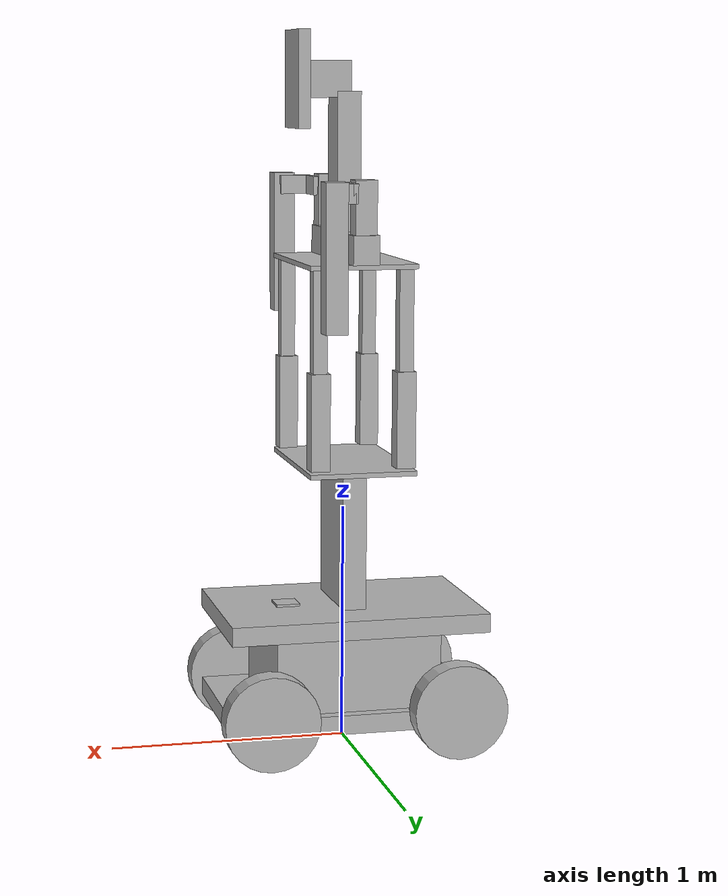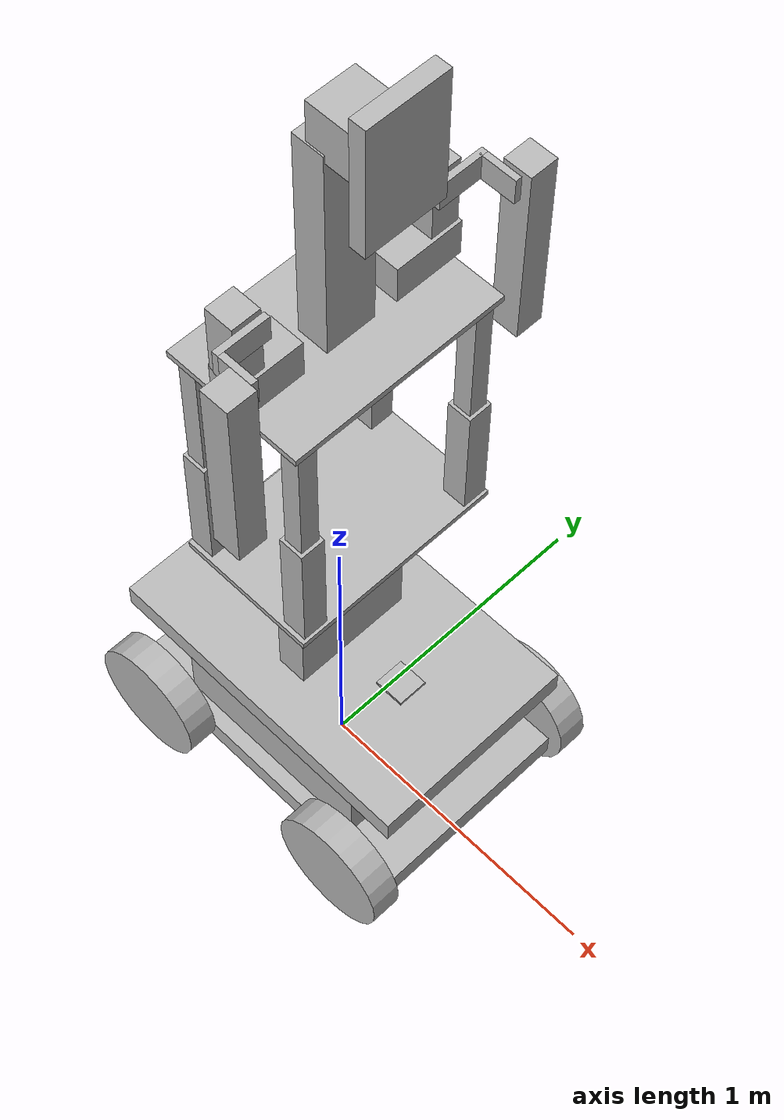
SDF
<?xml version='1.0'?>
<sdf version='1.4'>
	<model name="jeeves">
		<static>false</static>

		<link name='chassis'>
			<pose>0 0 .4 0 0 0</pose>

			<inertial>
				<mass>40.0</mass>
				<pose>-0.1 0 -0.3 0 0 0</pose>
				<inertia>
					<ixx>0.5</ixx>
					<iyy>1.0</iyy>
					<izz>0.1</izz>
				</inertia>
			</inertial>

			<collision name='collision'>
				<pose>0 0 0.2 0 0 0</pose>
				<geometry>
					<box>
						<size>1.1 0.7 1.0</size>
					</box>
				</geometry>
			</collision>
			<visual name='base_top'>
				<pose>0 0 0.8 0 0 0</pose>
				<geometry>
					<box>
						<size>0.45 0.7 0.02</size>
					</box>
				</geometry>
			</visual>
			<visual name="leg_visual">
				<pose>0 0 0.5 0 0 0</pose>
				<geometry>
					<box>
						<size>0.1 0.4 0.6</size>
					</box>
				</geometry>
			</visual>
			<visual name='base_bottom_top'>
				<pose>0 0 0.15 0 0 0</pose>
				<geometry>
					<box>
						<size>1.1 0.7 0.08</size>
					</box>
				</geometry>
			</visual>
			<visual name='base_bottom_mid'>
				<pose>0 0 -0.08 0 0 0</pose>
				<geometry>
					<box>
						<size>0.7 0.6 0.4</size>
					</box>
				</geometry>
			</visual>
			<visual name='base_bottom_bottom'>
				<pose>0 0 -0.25 0 0 0</pose>
				<geometry>
					<box>
						<size>1.1 0.7 0.08</size>
					</box>
				</geometry>
			</visual>

		</link>

		<link name="torso">
			<pose>0 0 2.05 0 0 0</pose>
			<!-- Inertia -->
			<inertial>
				<mass>20.0</mass>
				<pose>-0.1 0 -0.3 0 0 0</pose>
				<inertia>
					<ixx>0.5</ixx>
					<iyy>1.0</iyy>
					<izz>0.1</izz>
				</inertia>
			</inertial>

			<!-- Collision -->
			<collision name='collision'>
				<pose>0 0 -0.25 0 0 0</pose>
				<geometry>
					<box>
						<size>0.47 0.7 1.23</size>
					</box>
					<box>
						<size>0.27 0.2 2.23</size>
					</box>
				</geometry>
				<surface>
	            <friction>
	              <ode>
	                <mu>0.5</mu>
	                <mu2>0.2</mu2>
	                <fdir1>1.0 0 0</fdir1>
	                <slip1>0</slip1>
	                <slip2>0</slip2>
	              </ode>
	            </friction>
	            <bounce>
	              <restitution_coefficient>0</restitution_coefficient>
	              <threshold>1000000.0</threshold>
	            </bounce>
	            <contact>
	              <ode>
	                <soft_cfm>0</soft_cfm>
	                <kp>1e15</kp>
	                <kd>1e13</kd>
	                <max_vel>100.0</max_vel>
	                <min_depth>0.0001</min_depth>
	              </ode>
	            </contact>
	          </surface>
			</collision>

			<!-- Parts -->
			<visual name='torso_neck'>
				<pose>0 0 0.35 0 0 0</pose>
				<geometry>
					<box>
						<size>0.1 0.16 0.7</size>
					</box>
				</geometry>
			</visual>
			<visual name='torso_top'>
				<pose>0 0 0 0 0 0</pose>
				<geometry>
					<box>
						<size>0.45 0.7 0.02</size>
					</box>
				</geometry>
			</visual>
		</link>

		<!-- Linear actuators -->

		<link name="linearbase_front_left">
			<pose>0.18 0.3 1.22 0 0 0</pose>
			<visual name='torso_linactbase_front_left'>
				<pose>0 0 0.2 0 0 0</pose>
				<geometry>
					<box>
						<size>0.08 0.08 0.4</size>
					</box>
				</geometry>
			</visual>
		</link>
		<link name="linearbase_front_right">
			<pose>0.18 -0.3 1.22 0 0 0</pose>
			<visual name='torso_linactbase_front_right'>
				<pose>0 0 0.2 0 0 0</pose>
				<geometry>
					<box>
						<size>0.08 0.08 0.4</size>
					</box>
				</geometry>
			</visual>
		</link>
		<link name="linearbase_back_left">
			<pose>-0.18 0.3 1.22 0 0 0</pose>
			<visual name='torso_linactbase_back_left'>
				<pose>0 0 0.2 0 0 0</pose>
				<geometry>
					<box>
						<size>0.08 0.08 0.4</size>
					</box>
				</geometry>
			</visual>
		</link>
		<link name="linearbase_back_right">
			<pose>-0.18 -0.3 1.22 0 0 0</pose>
			<visual name='torso_linactbase_back_right'>
				<pose>0 0 0.2 0 0 0</pose>
				<geometry>
					<box>
						<size>0.08 0.08 0.4</size>
					</box>
				</geometry>
			</visual>
		</link>

		<link name="linear_front_left">
			<pose>0.18 0.3 1.6 0 0 0</pose>
			<visual name='visual'>
				<pose>0 0 0.2 0 0 0</pose>
				<geometry>
					<box>
						<size>0.06 0.06 0.5</size>
					</box>
				</geometry>
			</visual>
		</link>
		<link name="linear_front_right">
			<pose>0.18 -0.3 1.6 0 0 0</pose>
			<visual name='visual'>
				<pose>0 0 0.2 0 0 0</pose>
				<geometry>
					<box>
						<size>0.06 0.06 0.5</size>
					</box>
				</geometry>
			</visual>
		</link>
		<link name="linear_back_left">
			<pose>-0.18 0.3 1.6 0 0 0</pose>
			<visual name='visual'>
				<pose>0 0 0.2 0 0 0</pose>
				<geometry>
					<box>
						<size>0.06 0.06 0.5</size>
					</box>
				</geometry>
			</visual>
		</link>
		<link name="linear_back_right">
			<pose>-0.18 -0.3 1.6 0 0 0</pose>
			<visual name='visual'>
				<pose>0 0 0.2 0 0 0</pose>
				<geometry>
					<box>
						<size>0.06 0.06 0.5</size>
					</box>
				</geometry>
			</visual>
		</link>

		<link name="toplink_front_left">
			<pose>0.18 0.3 2.1 0 0 0</pose>
			<visual name='visual'>
				<pose>0 0 0.2 0 0 0</pose>
				<geometry>
					<box>
						<size>0 0 0</size>
					</box>
				</geometry>
			</visual>
		</link>
		<link name="toplink_front_right">
			<pose>0.18 -0.3 2.1 0 0 0</pose>
			<visual name='visual'>
				<pose>0 0 0.2 0 0 0</pose>
				<geometry>
					<box>
						<size>0 0 0</size>
					</box>
				</geometry>
			</visual>
		</link>
		<link name="toplink_back_left">
			<pose>-0.18 0.3 2.1 0 0 0</pose>
			<visual name='visual'>
				<pose>0 0 0.2 0 0 0</pose>
				<geometry>
					<box>
						<size>0 0 0</size>
					</box>
				</geometry>
			</visual>
		</link>
		<link name="toplink_back_right">
			<pose>-0.18 -0.3 2.1 0 0 0</pose>
			<visual name='visual'>
				<pose>0 0 0.2 0 0 0</pose>
				<geometry>
					<box>
						<size>0 0 0</size>
					</box>
				</geometry>
			</visual>
		</link>

		<!-- Left arm -->
		<link name="left_shoulder_yaw">
			<pose>0 0.26 2.12 0 0 0</pose>
			<visual name='visual'>
				<pose>0 0 0 0 0 0</pose>
				<geometry>
					<box>
						<size>0.11 0.22 0.12</size>
					</box>
				</geometry>
			</visual>
		</link>
		<link name="left_shoulder_roll">
			<pose>0 0.32 2.18 0 0 0</pose>
			<inertial>
				<mass>5.0</mass>
				<pose>0 0 0 0 0 0</pose>
				<inertia>
					<ixx>0.5</ixx>
					<iyy>1.0</iyy>
					<izz>0.1</izz>
				</inertia>
			</inertial>
			<visual name='visual'>
				<pose>0 0 0.11 0 0 0</pose>
				<geometry>
					<box>
						<size>0.09 0.09 0.22</size>
					</box>
				</geometry>
			</visual>
		</link>
		<link name="left_shoulder_link">
			<pose>0 0.32 2.35 0 0 0</pose>
			<visual name='left_shoulder_link1'>
				<pose>0.06 0.03 0 0 0 0</pose>
				<geometry>
					<box>
						<size>0.02 0.16 0.08</size>
					</box>
				</geometry>
			</visual>
			<visual name='left_shoulder_link2'>
				<pose>0.12 0.1 0 0 0 0</pose>
				<geometry>
					<box>
						<size>0.12 0.02 0.08</size>
					</box>
				</geometry>
			</visual>
		</link>
		<link name="left_shoulder_pitch">
			<self_collide>true</self_collide>
			<pose>0.16 0.48 2.35 0 0 0</pose>
			<inertial>
				<mass>10.0</mass>
				<pose>-0.1 0 -0.3 0 0 0</pose>
				<inertia>
					<ixx>0.5</ixx>
					<iyy>1.0</iyy>
					<izz>0.1</izz>
				</inertia>
			</inertial>
			<collision name='collision'>
				<pose>0 0 -0.25 0 0 0</pose>
				<geometry>
					<box>
						<size>0.09 0.09 0.6</size>
					</box>
				</geometry>
				<surface>
		            <friction>
		              <ode>
		                <mu>0.5</mu>
		                <mu2>0.2</mu2>
		                <fdir1>1.0 0 0</fdir1>
		                <slip1>0</slip1>
		                <slip2>0</slip2>
		              </ode>
		            </friction>
		            <bounce>
		              <restitution_coefficient>0</restitution_coefficient>
		              <threshold>1000000.0</threshold>
		            </bounce>
		            <contact>
		              <ode>
		                <soft_cfm>0</soft_cfm>
		                <kp>1e15</kp>
		                <kd>1e13</kd>
		                <max_vel>100.0</max_vel>
		                <min_depth>0.0001</min_depth>
		              </ode>
		            </contact>
		          </surface>
			</collision>
			<visual name='visual'>
				<pose>0 0 -0.25 0 0 0</pose>
				<geometry>
					<box>
						<size>0.09 0.09 0.6</size>
					</box>
				</geometry>
			</visual>
		</link>

		<!-- Right arm -->
		<link name="right_shoulder_yaw">
			<pose>0 -0.26 2.12 0 0 0</pose>
			<visual name='visual'>
				<pose>0 0 0 0 0 0</pose>
				<geometry>
					<box>
						<size>0.11 0.2 0.12</size>
					</box>
				</geometry>
			</visual>
		</link>

		<link name="right_shoulder_roll">
			<pose>0 -0.32 2.18 0 0 0</pose>
			<inertial>
				<mass>5.0</mass>
				<pose>0 0 0 0 0 0</pose>
				<inertia>
					<ixx>0.5</ixx>
					<iyy>1.0</iyy>
					<izz>0.1</izz>
				</inertia>
			</inertial>
			<visual name='visual'>
				<pose>0 0 0.11 0 0 0</pose>
				<geometry>
					<box>
						<size>0.09 0.09 0.22</size>
					</box>
				</geometry>
			</visual>
		</link>
		<link name="right_shoulder_link">
			<pose>0 -0.32 2.35 0 0 0</pose>
			<visual name='right_shoulder_link1'>
				<pose>0.06 -0.03 0 0 0 0</pose>
				<geometry>
					<box>
						<size>0.02 0.16 0.08</size>
					</box>
				</geometry>
			</visual>
			<visual name='right_shoulder_link2'>
				<pose>0.12 -0.1 0 0 0 0</pose>
				<geometry>
					<box>
						<size>0.12 0.02 0.08</size>
					</box>
				</geometry>
			</visual>
		</link>
		<link name="right_shoulder_pitch">
			<self_collide>true</self_collide>
			<pose>0.16 -0.48 2.35 0 0 0</pose>
			<inertial>
				<mass>10.0</mass>
				<pose>-0.1 0 -0.3 0 0 0</pose>
				<inertia>
					<ixx>0.5</ixx>
					<iyy>1.0</iyy>
					<izz>0.1</izz>
				</inertia>
			</inertial>
			<collision name='collision'>
				<pose>0 0 -0.25 0 0 0</pose>
				<geometry>
					<box>
						<size>0.09 0.09 0.6</size>
					</box>
				</geometry>
				<surface>
		            <friction>
		              <ode>
		                <mu>0.5</mu>
		                <mu2>0.2</mu2>
		                <fdir1>1.0 0 0</fdir1>
		                <slip1>0</slip1>
		                <slip2>0</slip2>
		              </ode>
		            </friction>
		            <bounce>
		              <restitution_coefficient>0</restitution_coefficient>
		              <threshold>1000000.0</threshold>
		            </bounce>
		            <contact>
		              <ode>
		                <soft_cfm>0</soft_cfm>
		                <kp>1e15</kp>
		                <kd>1e13</kd>
		                <max_vel>100.0</max_vel>
		                <min_depth>0.0001</min_depth>
		              </ode>
		            </contact>
		          </surface>
			</collision>
			<visual name='right_shoulder_pitch'>
				<pose>0 0 -0.25 0 0 0</pose>
				<geometry>
					<box>
						<size>0.09 0.09 0.6</size>
					</box>
				</geometry>
			</visual>
		</link>

		<!-- head/face -->
		<link name="neck_yawroll">
			<pose>0 0 2.8 0 0 0</pose>
			<inertial>
				<mass>1.0</mass>
				<pose>0 0 0 0 0 0</pose>
				<inertia>
					<ixx>0.5</ixx>
					<iyy>1.0</iyy>
					<izz>0.1</izz>
				</inertia>
			</inertial>
			<collision name='collision'>
				<pose>0.1 0 0 0 0 0</pose>
				<geometry>
					<box>
						<size>0.22 0.15 0.15</size>
					</box>
				</geometry>
			</collision>
			<visual name='visual'>
				<pose>0.1 0 0 0 0 0</pose>
				<geometry>
					<box>
						<size>0.22 0.15 0.15</size>
					</box>
				</geometry>
			</visual>
		</link>
		<link name="face">
			<pose>0.15 0 2.8 0 0 0</pose>
			<inertial>
				<mass>1.0</mass>
				<pose>0 0 0 0 0 0</pose>
				<inertia>
					<ixx>0.5</ixx>
					<iyy>1.0</iyy>
					<izz>0.1</izz>
				</inertia>
			</inertial>
			<collision name='collision'>
				<pose>0.05 0 0 0 0 0</pose>
				<geometry>
					<box>
						<size>0.05 0.25 0.4</size>
					</box>
				</geometry>
			</collision>
			<visual name='visual'>
				<pose>0.05 0 0 0 0 0</pose>
				<geometry>
					<box>
						<size>0.05 0.25 0.4</size>
					</box>
				</geometry>
			</visual>
		</link>

		<link name="front_left_wheel">
			<pose>0.4 0.4 0.2 0 1.5707 1.5707</pose>
			<collision name="collision">
				<geometry>
					<cylinder>
						<radius>.2</radius>
						<length>.1</length>
					</cylinder>
				</geometry>
			</collision>
			<visual name="visual">
				<geometry>
					<cylinder>
						<radius>.2</radius>
						<length>.1</length>
					</cylinder>
				</geometry>
			</visual>
		</link>

		<link name="front_right_wheel">
			<pose>0.4 -0.4 0.2 0 1.5707 1.5707</pose>
			<collision name="collision">
				<geometry>
					<cylinder>
						<radius>.2</radius>
						<length>.1</length>
					</cylinder>
				</geometry>
			</collision>
			<visual name="visual">
				<geometry>
					<cylinder>
						<radius>.2</radius>
						<length>.1</length>
					</cylinder>
				</geometry>
			</visual>
		</link>

		<link name="back_left_wheel">
			<pose>-0.4 0.4 0.2 0 1.5707 1.5707</pose>
			<collision name="collision">
				<geometry>
					<cylinder>
						<radius>.2</radius>
						<length>.1</length>
					</cylinder>
				</geometry>
			</collision>
			<visual name="visual">
				<geometry>
					<cylinder>
						<radius>.2</radius>
						<length>.1</length>
					</cylinder>
				</geometry>
			</visual>
		</link>

		<link name="back_right_wheel">
			<pose>-0.4 -0.4 0.2 0 1.5707 1.5707</pose>
			<collision name="collision">
				<geometry>
					<cylinder>
						<radius>.2</radius>
						<length>.1</length>
					</cylinder>
				</geometry>
			</collision>
			<visual name="visual">
				<geometry>
					<cylinder>
						<radius>.2</radius>
						<length>.1</length>
					</cylinder>
				</geometry>
			</visual>
		</link>

		<joint type="revolute" name="front_left_wheel_hinge">
			<pose>0 0 -0.03 0 0 0</pose>
			<child>front_left_wheel</child>
			<parent>chassis</parent>
			<axis>
				<xyz>0 1 0</xyz>
			</axis>
		</joint>

		<joint type="revolute" name="front_right_wheel_hinge">
			<pose>0 0 0.03 0 0 0</pose>
			<child>front_right_wheel</child>
			<parent>chassis</parent>
			<axis>
				<xyz>0 1 0</xyz>
			</axis>
		</joint>

		<joint type="revolute" name="back_left_wheel_hinge">
			<pose>0 0 -0.03 0 0 0</pose>
			<child>back_left_wheel</child>
			<parent>chassis</parent>
			<axis>
				<xyz>0 1 0</xyz>
			</axis>
		</joint>

		<joint type="revolute" name="back_right_wheel_hinge">
			<pose>0 0 0.03 0 0 0</pose>
			<child>back_right_wheel</child>
			<parent>chassis</parent>
			<axis>
				<xyz>0 1 0</xyz>
			</axis>
		</joint>

		<!-- Left shoulder joints -->
		<joint type="revolute" name="left_shoulder_yaw_mount">
			<pose>0 0 0 0 0 0</pose>
			<child>left_shoulder_yaw</child>
			<parent>torso</parent>
			<axis>
				<xyz>0 0 1</xyz>
				<limit>
					<upper>0</upper>
					<lower>0</lower>
				</limit>
			</axis>
		</joint>
		<joint type="revolute" name="left_shoulder_yaw_joint">
			<pose>0 0 -0.11 0 0 0 </pose>
			<child>left_shoulder_roll</child>
			<parent>left_shoulder_yaw</parent>
			<axis>
				<dynamics>
		          <damping>1.000000</damping>
		          <friction>1.000000</friction>
		        </dynamics>
		        <limit>
		          <lower>0.0</lower>
		          <upper>1.0</upper>
		        </limit>
				<xyz>0 0 1</xyz>
			</axis>
		</joint>

		<joint type="revolute" name="left_shoulder_rolljoint">
			<pose>0 0 0 0 0 0 </pose>
			<child>left_shoulder_link</child>
			<parent>left_shoulder_roll</parent>
			<axis>
				<dynamics>
		          <damping>1.000000</damping>
		          <friction>1.00000</friction>
		        </dynamics>
				<xyz>1 0 0</xyz>
			</axis>
		</joint>
		<!-- END of left shoulder joints -->

		<!-- Right shoulder joints -->
		<joint type="revolute" name="left_shoulder_pitchjoint">
			<pose>0 0 0 0 0 0 </pose>
			<child>left_shoulder_pitch</child>
			<parent>left_shoulder_link</parent>
			<axis>
				<xyz>0 1 0</xyz>
			</axis>
		</joint>

		<joint type="revolute" name="right_shoulder_yaw_mount">
			<pose>0 0 0 0 0 0</pose>
			<child>right_shoulder_yaw</child>
			<parent>torso</parent>
			<axis>
				<xyz>0 0 1</xyz>
				<limit>
					<upper>0</upper>
					<lower>0</lower>
				</limit>
			</axis>
		</joint>

		<joint type="revolute" name="right_shoulder_yaw_joint">
			<pose>0 0 -0.11 0 0 0</pose>
			<child>right_shoulder_roll</child>
			<parent>right_shoulder_yaw</parent>
			<axis>
				<dynamics>
		          <damping>1.000000</damping>
		          <friction>1.000000</friction>
		        </dynamics>
		        <limit>
		          <lower>0.0</lower>
		          <upper>1.0</upper>
		        </limit>
				<xyz>0 0 1</xyz>
			</axis>
		</joint>

		<joint type="revolute" name="right_shoulder_rolljoint">
			<pose>0 0 0 0 0 0</pose>
			<child>right_shoulder_link</child>
			<parent>right_shoulder_roll</parent>
			<axis>
				<dynamics>
		          <damping>1.000000</damping>
		          <friction>1.000000</friction>
		        </dynamics>
				<xyz>1 0 0</xyz>
			</axis>
		</joint>

		<joint type="revolute" name="right_shoulder_pitchjoint">
			<pose>0 0 0 0 0 0</pose>
			<child>right_shoulder_pitch</child>
			<parent>right_shoulder_link</parent>
			<axis>
				<xyz>0 1 0</xyz>
			</axis>
		</joint>
		<!-- END of right shoulder joints -->

		<!-- joints for base of linear actuators (not movable) -->
		<joint type="revolute" name="linearbase_front_left_mount">
			<pose>0 0 0 0 0 0</pose>
			<child>linearbase_front_left</child>
			<parent>chassis</parent>
			<axis>
				<xyz>0 0 1</xyz>
				<limit>
					<upper>0</upper>
					<lower>0</lower>
				</limit>
			</axis>
		</joint>
		<joint type="revolute" name="linearbase_front_right_mount">
			<pose>0 0 0 0 0 0</pose>
			<child>linearbase_front_right</child>
			<parent>chassis</parent>
			<axis>
				<xyz>0 0 1</xyz>
				<limit>
					<upper>0</upper>
					<lower>0</lower>
				</limit>
			</axis>
		</joint>
		<joint type="revolute" name="linearbase_back_left_mount">
			<pose>0 0 0 0 0 0</pose>
			<child>linearbase_back_left</child>
			<parent>chassis</parent>
			<axis>
				<xyz>0 0 1</xyz>
				<limit>
					<upper>0</upper>
					<lower>0</lower>
				</limit>
			</axis>
		</joint>
		<joint type="revolute" name="linearbase_back_right_mount">
			<pose>0 0 0 0 0 0</pose>
			<child>linearbase_back_right</child>
			<parent>chassis</parent>
			<axis>
				<xyz>0 0 1</xyz>
				<limit>
					<upper>0</upper>
					<lower>0</lower>
				</limit>
			</axis>
		</joint>
		<!-- END of joints for base of linear actuators (not movable) -->

		<joint type="prismatic" name="linear_front_left">
			<pose>0 0 0 0 0 0</pose>
			<child>linear_front_left</child>
			<parent>linearbase_front_left</parent>
			<axis>
		        <dynamics>
		          <damping>1.000000</damping>
		          <friction>1.000000</friction>
		        </dynamics>
		        <limit>
		          <lower>0.0</lower>
		          <upper>0.1</upper>
		        </limit>
		        <xyz>0 0 1</xyz>
		      </axis>
		      <physics>
		          <ode>
		            <cfm>0.0</cfm>
		            <bounce>0.0</bounce>
		            <max_force>1000.0</max_force>
		            <velocity>0.0</velocity>
		            <fudge_factor>0.0</fudge_factor>
		            <limit>
		              <cfm>0.0</cfm>
		              <erp>0.2</erp>
		            </limit>
		          </ode>
		        </physics>
		</joint>
		<joint type="prismatic" name="linear_front_right">
			<pose>0 0 0 0 0 0</pose>
			<child>linear_front_right</child>
			<parent>linearbase_front_right</parent>
			<axis>
		        <dynamics>
		          <damping>1.000000</damping>
		          <friction>1.000000</friction>
		        </dynamics>
		        <limit>
		          <lower>0.0</lower>
		          <upper>0.1</upper>
		        </limit>
		        <xyz>0 0 1</xyz>
		      </axis>
		      <physics>
		          <ode>
		            <cfm>0.0</cfm>
		            <bounce>0.0</bounce>
		            <max_force>1000.0</max_force>
		            <velocity>0.0</velocity>
		            <fudge_factor>0.0</fudge_factor>
		            <limit>
		              <cfm>0.0</cfm>
		              <erp>0.2</erp>
		            </limit>
		          </ode>
		        </physics>
		</joint>
		<joint type="prismatic" name="linear_back_left">
			<pose>0 0 0 0 0 0</pose>
			<child>linear_back_left</child>
			<parent>linearbase_back_left</parent>
			<axis>
		        <limit>
		          <lower>0.0</lower>
		          <upper>0.1</upper>
		        </limit>
		        <xyz>0 0 1</xyz>
		      </axis>
		      <physics>
		          <ode>
		            <cfm>0.0</cfm>
		            <bounce>0.0</bounce>
		            <max_force>1000.0</max_force>
		            <velocity>0.0</velocity>
		            <fudge_factor>0.0</fudge_factor>
		            <limit>
		              <cfm>0.0</cfm>
		              <erp>0.2</erp>
		            </limit>
		          </ode>
		        </physics>
		</joint>
		<joint type="prismatic" name="linear_back_right">
			<pose>0 0 0 0 0 0</pose>
			<child>linear_back_right</child>
			<parent>linearbase_back_right</parent>
			<axis>
		        <limit>
		          <lower>0.0</lower>
		          <upper>0.1</upper>
		        </limit>
		        <xyz>0 0 1</xyz>
		      </axis>
		      <physics>
		          <ode>
		            <cfm>0.0</cfm>
		            <bounce>0.0</bounce>
		            <max_force>1000.0</max_force>
		            <velocity>0.0</velocity>
		            <fudge_factor>0.0</fudge_factor>
		            <limit>
		              <cfm>0.0</cfm>
		              <erp>0.2</erp>
		            </limit>
		          </ode>
		        </physics>
		</joint>

		<!-- NECK JOINT -->
		<joint type="revolute" name="neck">
			<pose>0 0 0 0 0 0</pose>
			<child>neck_yawroll</child>
			<parent>torso</parent>
			<axis>
				<xyz>1 0 1</xyz>
			</axis>
		</joint>
		<joint type="revolute" name="face">
			<pose>0 0 0 0 0 0</pose>
			<child>face</child>
			<parent>neck_yawroll</parent>
			<axis>
				<xyz>0 1 0</xyz>
			</axis>
		</joint>

		<joint type="revolute" name="toplink_front_left_mount">
			<pose>0 0 0 0 0 0</pose>
			<child>toplink_front_left</child>
			<parent>torso</parent>
			<axis>
				<xyz>0 0 1</xyz>
				<limit>
					<upper>0</upper>
					<lower>0</lower>
				</limit>
			</axis>
		</joint>
		<joint type="revolute" name="toplink_front_right_mount">
			<pose>0 0 0 0 0 0</pose>
			<child>toplink_front_right</child>
			<parent>torso</parent>
			<axis>
				<xyz>0 0 1</xyz>
				<limit>
					<upper>0</upper>
					<lower>0</lower>
				</limit>
			</axis>
		</joint>
		<joint type="revolute" name="toplink_back_left_mount">
			<pose>0 0 0 0 0 0</pose>
			<child>toplink_back_left</child>
			<parent>torso</parent>
			<axis>
				<xyz>0 0 1</xyz>
				<limit>
					<upper>0</upper>
					<lower>0</lower>
				</limit>
			</axis>
		</joint>
		<joint type="revolute" name="toplink_back_right_mount">
			<pose>0 0 0 0 0 0</pose>
			<child>toplink_back_right</child>
			<parent>torso</parent>
			<axis>
				<xyz>0 0 1</xyz>
				<limit>
					<upper>0</upper>
					<lower>0</lower>
				</limit>
			</axis>
		</joint>
		<joint type="revolute" name="toplink_front_left_mount2">
			<pose>0 0 0 0 0 0</pose>
			<child>toplink_front_left</child>
			<parent>linear_front_left</parent>
			<axis>
				<xyz>0 0 1</xyz>
				<limit>
					<upper>0</upper>
					<lower>0</lower>
				</limit>
			</axis>
		</joint>
		<joint type="revolute" name="toplink_front_right_mount2">
			<pose>0 0 0 0 0 0</pose>
			<child>toplink_front_right</child>
			<parent>linear_front_right</parent>
			<axis>
				<xyz>0 0 1</xyz>
				<limit>
					<upper>0</upper>
					<lower>0</lower>
				</limit>
			</axis>
		</joint>
		<joint type="revolute" name="toplink_back_left_mount2">
			<pose>0 0 0 0 0 0</pose>
			<child>toplink_back_left</child>
			<parent>linear_back_left</parent>
			<axis>
				<xyz>0 0 1</xyz>
				<limit>
					<upper>0</upper>
					<lower>0</lower>
				</limit>
			</axis>
		</joint>
		<joint type="revolute" name="toplink_back_right_mount2">
			<pose>0 0 0 0 0 0</pose>
			<child>toplink_back_right</child>
			<parent>linear_back_right</parent>
			<axis>
				<xyz>0 0 1</xyz>
				<limit>
					<upper>0</upper>
					<lower>0</lower>
				</limit>
			</axis>
		</joint>

		<include>
			<uri>model://camera</uri>
			<pose>0.25 0 0.55 0 0 0</pose>
		</include>
		<joint name="camera_joint" type="revolute">
			<child>camera::link</child>
			<parent>chassis</parent>
			<axis>
				<xyz>0 0 1</xyz>
				<limit>
					<upper>0</upper>
					<lower>0</lower>
				</limit>
			</axis>
		</joint>
	</model>
</sdf>

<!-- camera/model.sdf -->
<sdf version="1.5">
  <model name="camera">
    <pose>0 0 0.05 0 0 0</pose>
    <link name="link">
      <inertial>
        <mass>0.1</mass>
        <inertia>
          <ixx>0.000166667</ixx>
          <iyy>0.000166667</iyy>
          <izz>0.000166667</izz>
        </inertia>
      </inertial>
      <collision name="collision">
        <geometry>
          <box>
            <size>0.1 0.1 0.1</size>
          </box>
        </geometry>
      </collision>
      <visual name="visual">
        <geometry>
          <box>
            <size>0.1 0.1 0.1</size>
          </box>
        </geometry>
      </visual>
      <sensor name="camera" type="camera">
        <camera>
          <horizontal_fov>1.047</horizontal_fov>
          <image>
            <width>320</width>
            <height>240</height>
          </image>
          <clip>
            <near>0.1</near>
            <far>100</far>
          </clip>
        </camera>
        <always_on>1</always_on>
        <update_rate>30</update_rate>
        <visualize>true</visualize>
      </sensor>
    </link>
  </model>
</sdf>
